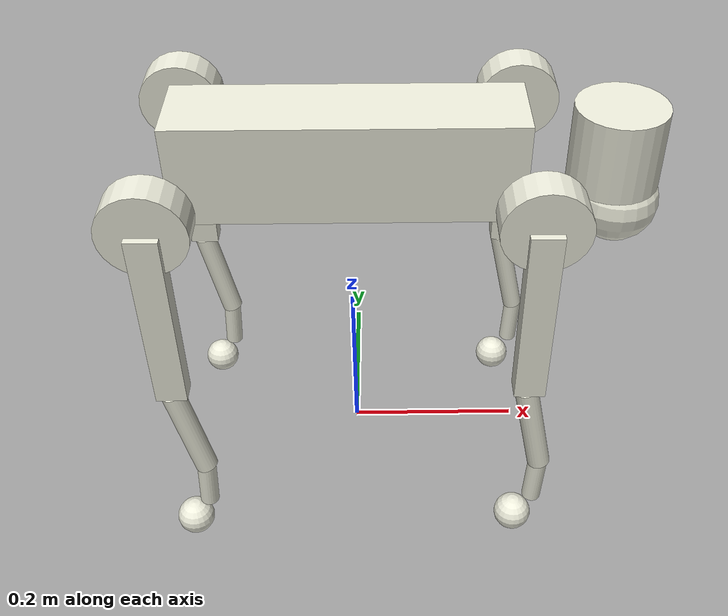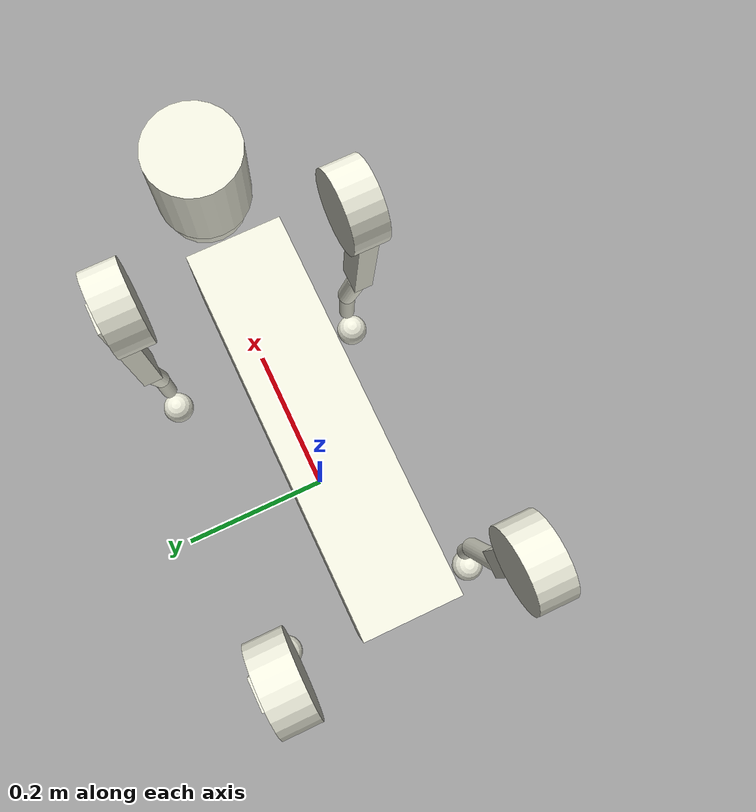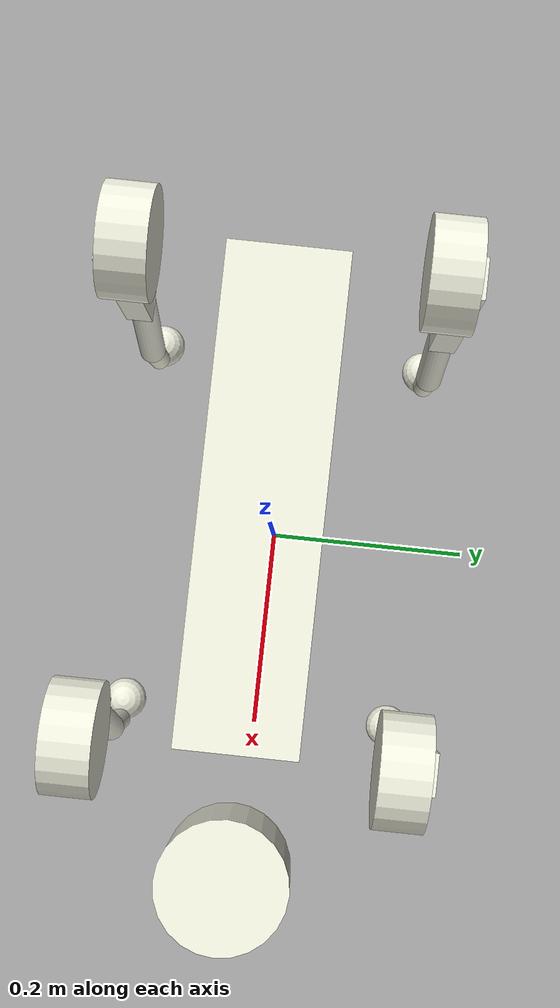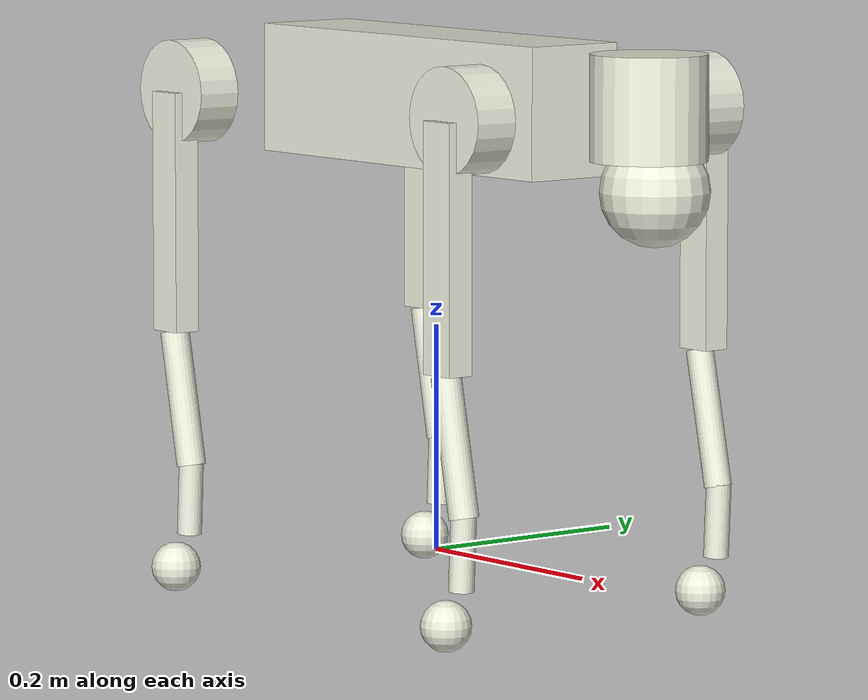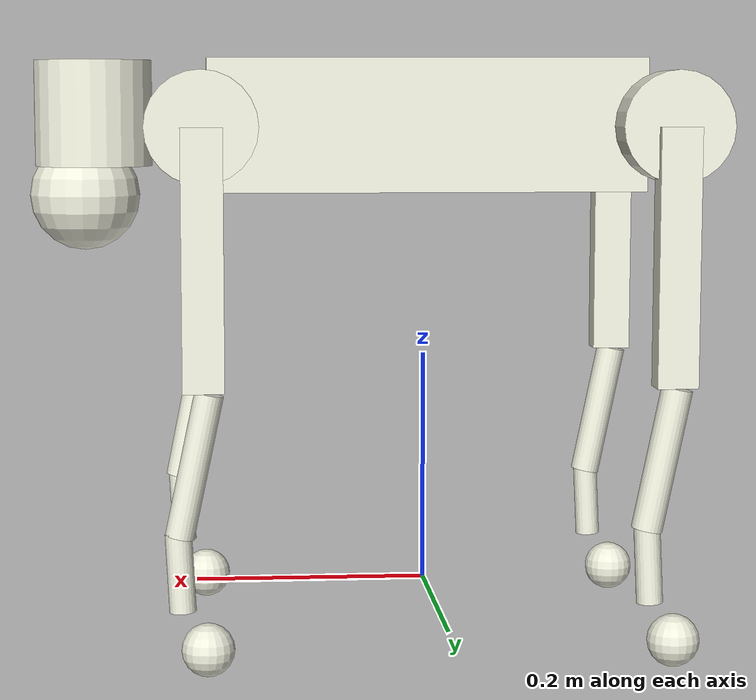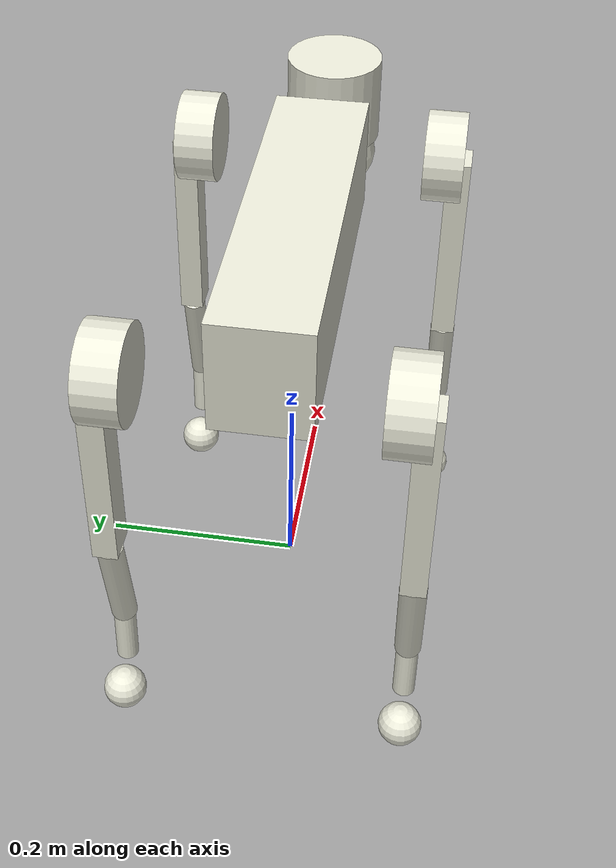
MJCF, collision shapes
<mujoco model="go2_description">
  <compiler angle="radian"/>
  <size njmax="500" nconmax="100"/>
  <option gravity='0 0 -9.806' iterations='50' solver='Newton' timestep='0.002'/>

  <default>
    <geom contype="1" conaffinity="1" friction="1.0 0.3 0.3" margin="0.001" group="0"/>
    <light castshadow="false" diffuse="1 1 1"/>
    <motor ctrlrange="-33.5 33.5" ctrllimited="true"/>
    <camera fovy="60"/>
    <joint damping="0.6" armature="0.01" frictionloss="0.2"/>
    <!-- Not sure if this is necessary-->
    <position kp="30" forcerange="-23.7 23.7"/>
  </default>

  <asset>
    <mesh name="trunk" file="meshes/trunk.stl"/>
    <mesh name="hip" file="meshes/hip.stl"/>
    <mesh name="thigh_mirror" file="meshes/thigh_mirror.stl"/>
    <mesh name="calf" file="meshes/calf.stl"/>
    <mesh name="thigh" file="meshes/thigh.stl"/>
    <texture name="plane" type="2d" builtin="flat" rgb1="1 1 1" rgb2="1 1 1" width="512" height="512" mark="cross" markrgb="0 0 0"/>
    <material name="plane" reflectance="0.0" texture="plane" texrepeat="3 3" texuniform="true"/>
    <material name="go2" specular="0.3068755176666667" reflectance="1.0" shininess="0.025" rgba="0.3 0.3 0.3 0.9"/>
    <material name="go2-hip" specular="0.3068755176666667" shininess="0.025" rgba="0.2 0.2 0.2 0.9"/>
    <material name="go2-thigh" specular="0.9" reflectance="1.0" shininess="1.0" rgba="0.5 0.5 0.5 0.9"/>
    <material name="metal" rgba=".9 .95 .95 .9" />
    <material name="black" rgba="0 0 0 .9" />
    <material name="white" rgba="1 1 1 .9" />
    <material name="gray" rgba="0.671705 0.692426 0.774270 .9" />
    <mesh file="assets/base_0.obj" />
    <mesh file="assets/base_1.obj" />
    <mesh file="assets/base_2.obj" />
    <mesh file="assets/base_3.obj" />
    <mesh file="assets/base_4.obj" />
    <mesh file="assets/hip_0.obj" />
    <mesh file="assets/hip_1.obj" />
    <mesh file="assets/thigh_0.obj" />
    <mesh file="assets/thigh_1.obj" />
    <mesh file="assets/thigh_mirror_0.obj" />
    <mesh file="assets/thigh_mirror_1.obj" />
    <mesh file="assets/calf_0.obj" />
    <mesh file="assets/calf_1.obj" />
    <mesh file="assets/calf_mirror_0.obj" />
    <mesh file="assets/calf_mirror_1.obj" />
    <mesh file="assets/foot.obj" />
  </asset>

  <visual>
    <rgba com="0.502 1.0 0 0.0" contactforce="0.98 0.4 0.4 0.7" contactpoint="1.0 1.0 0.6 0.4"/>
    <scale com="0.2" forcewidth="0.035" contactwidth="0.10" contactheight="0.04"/>
    <global offwidth="1280" offheight="768"/>
  </visual>

  <worldbody>

    <light directional="true" diffuse=".8 .8 .8" pos="0 0 10" dir="0 0 -10"/>
    <body name="trunk" pos="0 0 0.4">
      <camera name="tracking" mode="trackcom" pos="0 -1 1" xyaxes="1 0 0 0 1 1"/>
      <camera name="tracking-ground" mode="trackcom" pos="0 -1 -0.3" xyaxes="1 0 0 0 0 1"/>
      <camera name="tracking-2" mode="trackcom" pos="0 -1 0" xyaxes="1 0 0 0 0 1"/>
      <camera name="realsense" pos="0.285 0 0.175" xyaxes="0 -1 0 0.316 0 0.949" fovy="56.18593669466556"/>
      <camera name="ego-rgb" pos="0.285 0 0.175" xyaxes="0 -1 0 0.316 0 0.949" fovy="90"/>
      <camera name="ego-rgb-render" pos="0.285 0 0.175" xyaxes="0 -1 0 0.316 0 0.949" fovy="92.69673787219053"/>
      <camera name="realsense-rgb" pos="0.285 0 0.175" xyaxes="0 -1 0 0.316 0 0.949" fovy="42.61"/>
      <camera name="realsense-rgb-render" pos="0.285 0 0.175" xyaxes="0 -1 0 0.316 0 0.949" fovy="45.1729792"/>
      <camera name="heightmap" mode="trackcom" pos="0 0 25" xyaxes="0 -1 0 1 0 0" fovy="6"/>
      <inertial pos="0.0116053 0.00442221 0.000106692" quat="0.0111438 0.707126 -0.00935374 0.706938" mass="4.801"
                diaginertia="0.0447997 0.0366257 0.0162187"/>
      <joint type="free"/>
    <geom mesh="base_0" material="white" type="mesh" contype="0" conaffinity="0" group="1" />
      <geom mesh="base_1" material="white" type="mesh" contype="0" conaffinity="0" group="1" />
      <geom mesh="base_2" material="white" type="mesh" contype="0" conaffinity="0" group="1" />
      <geom mesh="base_3" material="white" type="mesh" contype="0" conaffinity="0" group="1" />
      <geom mesh="base_4" material="gray" type="mesh" contype="0" conaffinity="0" group="1" />
      <geom name="base" size="0.1881 0.04675 0.057" type="box" group="1" rgba="0.913725 0.913725 0.847059 0.9"/>
      <geom name="face_head" size="0.05 0.045" pos="0.285 0 0.01" type="cylinder" group="1" rgba="0.913725 0.913725 0.847059 0.9"/>
      <geom name="face_dome" size="0.047" pos="0.293 0 -0.06" group="1" rgba="0.913725 0.913725 0.847059 0.9"/>
      <site name="imu" pos="0 0 0"/>

      <body name="FR_hip" pos="0.1934 -0.0465 0">
        <inertial pos="-0.0054 -0.00194 -0.000105" quat="0.498237 0.505462 0.499245 0.497014"
          mass="0.678" diaginertia="0.00088403 0.000596003 0.000479967" />
        <joint name="FR_hip_joint" pos="0 0 0" axis="1 0 0" limited="true" range="-1.0472 1.0472"/>
        <geom mesh="hip_0" material="metal" type="mesh" contype="0" conaffinity="0" group="1" quat="4.63268e-05 1 0 0" />
        <geom mesh="hip_1" material="gray" type="mesh" contype="0" conaffinity="0" group="1" quat="4.63268e-05 1 0 0" />
        <geom size="0.046 0.02" pos="0 -0.08 0" quat="0.707107 0.707107 0 0" type="cylinder" group="1" rgba="0.913725 0.913725 0.847059 0.9"/>

        <body name="FR_thigh" pos="0 -0.0955 0">
          <inertial pos="-0.00374 0.0223 -0.0327" quat="0.551623 -0.0200632 0.0847635 0.829533"
            mass="1.152" diaginertia="0.00594973 0.00584149 0.000878787" />
          <joint name="FR_thigh_joint" pos="0 0 0" axis="0 1 0" limited="true" range="-1.5708 3.4907"/>
           <geom mesh="thigh_mirror_0" material="metal" type="mesh" contype="0" conaffinity="0" group="1" />
          <geom mesh="thigh_mirror_1" material="gray" type="mesh" contype="0" conaffinity="0" group="1" />
          <geom size="0.1065 0.01225 0.017" pos="0 0 -0.1065" quat="0.707107 0 0.707107 0"
            type="box" group="1" rgba="0.913725 0.913725 0.847059 0.9"/>
          <body name="FR_calf" pos="0 0 -0.213">
         <inertial pos="0.00629595 0.000622121 -0.141417"
              quat="0.703508 -0.00450087 0.00154099 0.710672"
              mass="0.241352" diaginertia="0.0014901 0.00146356 5.31397e-05" />
            <joint name="FR_calf_joint" pos="0 0 0" axis="0 1 0" limited="true" range="-2.7227 -0.83776"/>
            <geom mesh="calf_mirror_0" material="gray" type="mesh" contype="0" conaffinity="0" group="1" />
            <geom mesh="calf_mirror_1" material="black" type="mesh" contype="0" conaffinity="0" group="1" />
            <geom size="0.013 0.06" pos="0.01 0 -0.06" quat="0.995004 0 -0.0998334 0" type="cylinder" group="1" rgba="0.913725 0.913725 0.847059 0.9"/>
            <geom size="0.011 0.0325" pos="0.02 0 -0.148" quat="0.999688 0 0.0249974 0" type="cylinder" group="1" rgba="0.913725 0.913725 0.847059 0.9"/>
            <geom pos="0 0 -0.213" mesh="foot" type="mesh" contype="0" conaffinity="0" group="1" material="black" />
            <geom name="FR" size="0.022" pos="-0.002 0 -0.213" rgba="0.913725 0.913725 0.847059 0.9"/>
          </body>
        </body>
      </body>

      <body name="FL_hip" pos="0.1934 0.0465 0">
        <inertial pos="-0.0054 0.00194 -0.000105" quat="0.497014 0.499245 0.505462 0.498237"
          mass="0.678"
          diaginertia="0.00088403 0.000596003 0.000479967" />
        <joint name="FL_hip_joint" pos="0 0 0" axis="1 0 0" limited="true" range="-1.0472 1.0472"/>
        <geom mesh="hip_0" material="metal" type="mesh" contype="0" conaffinity="0" group="1" />
        <geom mesh="hip_1" material="gray" type="mesh" contype="0" conaffinity="0" group="1" />
        <geom size="0.046 0.02" pos="0 0.08 0" quat="1 1 0 0" type="cylinder" group="1" rgba="0.913725 0.913725 0.847059 0.9"/>

        <body name="FL_thigh" pos="0 0.0955 0">
          <inertial pos="-0.00374 -0.0223 -0.0327" quat="0.829533 0.0847635 -0.0200632 0.551623"
            mass="1.152"
            diaginertia="0.00594973 0.00584149 0.000878787" />
          <joint name="FL_thigh_joint" pos="0 0 0" axis="0 1 0" limited="true" range="-1.5708 3.4907"/>
          <geom mesh="thigh_0" material="metal" type="mesh" contype="0" conaffinity="0" group="1" />
          <geom mesh="thigh_1" material="gray" type="mesh" contype="0" conaffinity="0" group="1" />
          <geom size="0.1065 0.01225 0.017" pos="0 0 -0.1065" quat="0.707107 0 0.707107 0"
            type="box" group="1" rgba="0.913725 0.913725 0.847059 0.9"/>

         <body name="FL_calf" pos="0 0 -0.213">
            <inertial pos="0.00629595 -0.000622121 -0.141417"
              quat="0.710672 0.00154099 -0.00450087 0.703508"
              mass="0.241352" diaginertia="0.0014901 0.00146356 5.31397e-05" />
            <joint name="FL_calf_joint" pos="0 0 0" axis="0 1 0" limited="true" range="-2.7227 -0.83776" />
            <geom mesh="calf_0" material="gray" type="mesh" contype="0" conaffinity="0" group="1" />
            <geom mesh="calf_1" material="black" type="mesh" contype="0" conaffinity="0" group="1" />
            <geom size="0.012 0.06" pos="0.008 0 -0.06" quat="0.994493 0 -0.104807 0"
              type="cylinder" group="1" rgba="0.913725 0.913725 0.847059 0.9"/>
            <geom size="0.011 0.0325" pos="0.02 0 -0.148" quat="0.999688 0 0.0249974 0"
              type="cylinder" group="1" rgba="0.913725 0.913725 0.847059 0.9"/>
            <geom pos="0 0 -0.213" mesh="foot" type="mesh" contype="0" conaffinity="0" group="1" material="black" />
            <geom name="FL" size="0.022" pos="-0.002 0 -0.213" rgba="0.913725 0.913725 0.847059 0.9"/>
          </body>
        </body>
      </body>

     <body name="RR_hip" pos="-0.1934 -0.0465 0">
        <inertial pos="0.0054 -0.00194 -0.000105" quat="0.499245 0.497014 0.498237 0.505462"
          mass="0.678"
          diaginertia="0.00088403 0.000596003 0.000479967" />
        <joint name="RR_hip_joint" pos="0 0 0" axis="1 0 0" limited="true" range="-1.0472 1.0472"/>
          <geom mesh="hip_0" material="metal" type="mesh" contype="0" conaffinity="0" group="1"
          quat="2.14617e-09 4.63268e-05 4.63268e-05 -1" />
        <geom mesh="hip_1" material="gray" type="mesh" contype="0" conaffinity="0" group="1"
          quat="2.14617e-09 4.63268e-05 4.63268e-05 -1" />
        <geom size="0.046 0.02" pos="0 -0.08 0" quat="0.707107 0.707107 0 0" type="cylinder"
          group="1" rgba="0.913725 0.913725 0.847059 0.9"/>

          <body name="RR_thigh" pos="0 -0.0955 0">
          <inertial pos="-0.00374 0.0223 -0.0327" quat="0.551623 -0.0200632 0.0847635 0.829533"
            mass="1.152"
            diaginertia="0.00594973 0.00584149 0.000878787" />
          <joint name="RR_thigh_joint" pos="0 0 0" axis="0 1 0" limited="true" range="-0.5236 4.5379"/>
          <geom mesh="thigh_mirror_0" material="metal" type="mesh" contype="0" conaffinity="0" group="1" />
          <geom mesh="thigh_mirror_1" material="gray" type="mesh" contype="0" conaffinity="0" group="1" />
          <geom size="0.1065 0.01225 0.017" pos="0 0 -0.1065" quat="0.707107 0 0.707107 0"
            type="box" group="1" rgba="0.913725 0.913725 0.847059 0.9"/>

          <body name="RR_calf" pos="0 0 -0.213">
            <inertial pos="0.00629595 0.000622121 -0.141417"
              quat="0.703508 -0.00450087 0.00154099 0.710672"
              mass="0.241352" diaginertia="0.0014901 0.00146356 5.31397e-05" />

            <joint name="RR_calf_joint" pos="0 0 0" axis="0 1 0" limited="true" range="-2.7227 -0.83776"/>
    <geom mesh="calf_mirror_0" material="gray" type="mesh" contype="0" conaffinity="0" group="1" />
            <geom mesh="calf_mirror_1" material="black" type="mesh" contype="0" conaffinity="0" group="1" />
            <geom size="0.013 0.06" pos="0.01 0 -0.06" quat="0.995004 0 -0.0998334 0"
              type="cylinder" group="1" rgba="0.913725 0.913725 0.847059 0.9"/>
            <geom size="0.011 0.0325" pos="0.02 0 -0.148" quat="0.999688 0 0.0249974 0"
              type="cylinder" group="1" rgba="0.913725 0.913725 0.847059 0.9"/>
            <geom pos="0 0 -0.213" mesh="foot" type="mesh" contype="0" conaffinity="0" group="1" material="black" />
            <geom name="RR" size="0.022" pos="-0.002 0 -0.213" rgba="0.913725 0.913725 0.847059 0.9"/>
          </body>
        </body>
      </body>
    <body name="RL_hip" pos="-0.1934 0.0465 0">
        <inertial pos="0.0054 0.00194 -0.000105" quat="0.505462 0.498237 0.497014 0.499245"
          mass="0.678"
          diaginertia="0.00088403 0.000596003 0.000479967" />
        <joint name="RL_hip_joint" pos="0 0 0" axis="1 0 0" limited="true" range="-1.0472 1.0472"/>
         <geom mesh="hip_0" material="metal" type="mesh" contype="0" conaffinity="0" group="1" quat="4.63268e-05 0 1 0" />
        <geom mesh="hip_1" material="gray" type="mesh" contype="0" conaffinity="0" group="1" quat="4.63268e-05 0 1 0" />
        <geom size="0.046 0.02" pos="0 0.08 0" quat="0.707107 0.707107 0 0" type="cylinder"
          group="1" rgba="0.913725 0.913725 0.847059 0.9"/>
        <body name="RL_thigh" pos="0 0.0955 0">
          <inertial pos="-0.00374 -0.0223 -0.0327" quat="0.829533 0.0847635 -0.0200632 0.551623"
            mass="1.152"
            diaginertia="0.00594973 0.00584149 0.000878787" />
          <joint name="RL_thigh_joint" pos="0 0 0" axis="0 1 0" limited="true" range="-0.5236 4.5379"/>
         <geom mesh="thigh_0" material="metal" type="mesh" contype="0" conaffinity="0" group="1" />
          <geom mesh="thigh_1" material="gray" type="mesh" contype="0" conaffinity="0" group="1" />
          <geom size="0.1065 0.01225 0.017" pos="0 0 -0.1065" quat="0.707107 0 0.707107 0"
            type="box" group="1" rgba="0.913725 0.913725 0.847059 0.9"/>
          <body name="RL_calf" pos="0 0 -0.213">
            <inertial pos="0.00629595 -0.000622121 -0.141417"
              quat="0.710672 0.00154099 -0.00450087 0.703508"
              mass="0.241352" diaginertia="0.0014901 0.00146356 5.31397e-05" />
            <joint name="RL_calf_joint" pos="0 0 0" axis="0 1 0" limited="true" range="-2.7227 -0.83776"/>
            <geom mesh="calf_0" material="gray" type="mesh" contype="0" conaffinity="0" group="1" />
            <geom mesh="calf_1" material="black" type="mesh" contype="0" conaffinity="0" group="1" />
            <geom size="0.013 0.06" pos="0.01 0 -0.06" quat="0.995004 0 -0.0998334 0"
              type="cylinder" group="1" rgba="0.913725 0.913725 0.847059 0.9"/>
            <geom size="0.011 0.0325" pos="0.02 0 -0.148" quat="0.999688 0 0.0249974 0"
              type="cylinder" group="1" rgba="0.913725 0.913725 0.847059 0.9"/>
            <geom pos="0 0 -0.213" mesh="foot" type="mesh" contype="0" conaffinity="0" group="1" material="black" />
            <geom name="RL" size="0.022" pos="-0.002 0 -0.213" rgba="0.913725 0.913725 0.847059 0.9"/>

          </body>
        </body>
      </body>
     </body>

      <camera name="flow-render-cam" xyaxes="0 -1 0 0 0 1" fovy="92.69673787219053"/>
      <camera name="flow-cam" xyaxes="0 -1 0 0 0 1" fovy="90"/>
  </worldbody>
  <actuator>
    <position name="FR_hip" joint="FR_hip_joint"/>
    <position name="FR_thigh" joint="FR_thigh_joint"/>
    <position name="FR_calf" joint="FR_calf_joint"/>
    <position name="FL_hip" joint="FL_hip_joint"/>
    <position name="FL_thigh" joint="FL_thigh_joint"/>
    <position name="FL_calf" joint="FL_calf_joint"/>
    <position name="RR_hip" joint="RR_hip_joint"/>
    <position name="RR_thigh" joint="RR_thigh_joint"/>
    <position name="RR_calf" joint="RR_calf_joint"/>
    <position name="RL_hip" joint="RL_hip_joint"/>
    <position name="RL_thigh" joint="RL_thigh_joint"/>
    <position name="RL_calf" joint="RL_calf_joint"/>
  </actuator>

  <sensor>

    <jointpos name="FR_hip_pos" joint="FR_hip_joint"/>
    <jointpos name="FR_thigh_pos" joint="FR_thigh_joint"/>
    <jointpos name="FR_calf_pos" joint="FR_calf_joint"/>
    <jointpos name="FL_hip_pos" joint="FL_hip_joint"/>
    <jointpos name="FL_thigh_pos" joint="FL_thigh_joint"/>
    <jointpos name="FL_calf_pos" joint="FL_calf_joint"/>
    <jointpos name="RR_hip_pos" joint="RR_hip_joint"/>
    <jointpos name="RR_thigh_pos" joint="RR_thigh_joint"/>
    <jointpos name="RR_calf_pos" joint="RR_calf_joint"/>
    <jointpos name="RL_hip_pos" joint="RL_hip_joint"/>
    <jointpos name="RL_thigh_pos" joint="RL_thigh_joint"/>
    <jointpos name="RL_calf_pos" joint="RL_calf_joint"/>

    <jointvel name="FR_hip_vel" joint="FR_hip_joint"/>
    <jointvel name="FR_thigh_vel" joint="FR_thigh_joint"/>
    <jointvel name="FR_calf_vel" joint="FR_calf_joint"/>
    <jointvel name="FL_hip_vel" joint="FL_hip_joint"/>
    <jointvel name="FL_thigh_vel" joint="FL_thigh_joint"/>
    <jointvel name="FL_calf_vel" joint="FL_calf_joint"/>
    <jointvel name="RR_hip_vel" joint="RR_hip_joint"/>
    <jointvel name="RR_thigh_vel" joint="RR_thigh_joint"/>
    <jointvel name="RR_calf_vel" joint="RR_calf_joint"/>
    <jointvel name="RL_hip_vel" joint="RL_hip_joint"/>
    <jointvel name="RL_thigh_vel" joint="RL_thigh_joint"/>
    <jointvel name="RL_calf_vel" joint="RL_calf_joint"/>

    <accelerometer name="Body_Acc" site="imu"/>

    <gyro name="Body_Gyro" site="imu"/>

  </sensor>
</mujoco>
